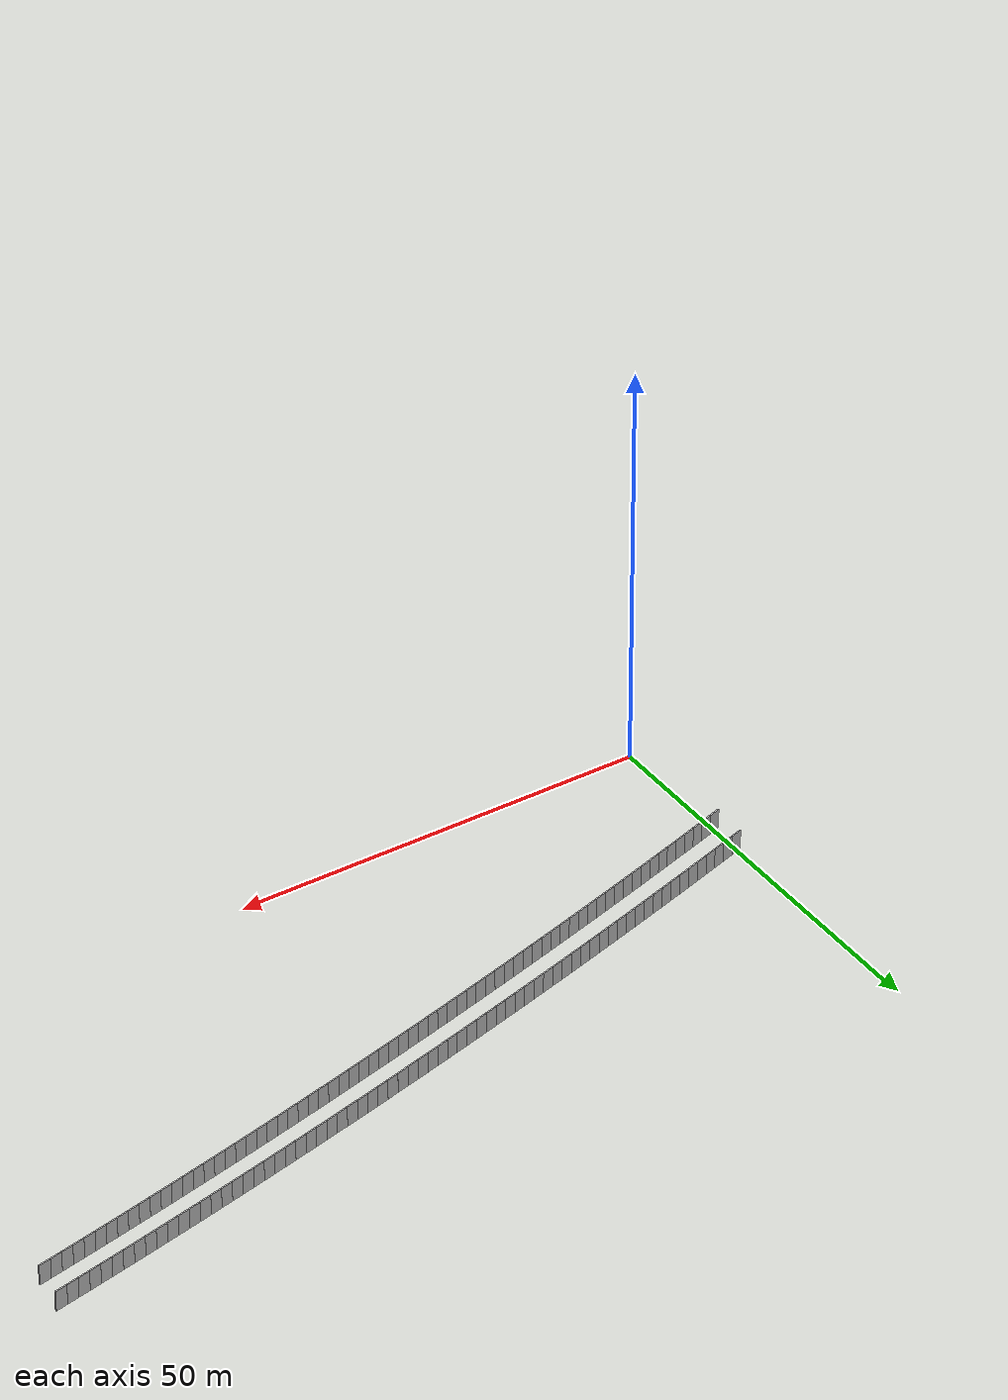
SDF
<sdf version="1.6">
 <model name="sps_0923">
  <static>1</static>
  <allow_auto_disable>0</allow_auto_disable>
  <link name="Wall3027">
   <collision name="collision"><geometry><box><size>1.49635 0.15 2.5</size></box></geometry></collision>
   <visual name="visual">
    <geometry><box><size>1.49635 0.15 2.5</size></box></geometry>
    <transparency>0.0</transparency>
   </visual>
   <pose>98.6193 41.263 1.25 0 0 -2.94586</pose>
  </link>
  <link name="Wall3028">
   <collision name="collision"><geometry><box><size>1.49668 0.15 2.5</size></box></geometry></collision>
   <visual name="visual">
    <geometry><box><size>1.49668 0.15 2.5</size></box></geometry>
    <transparency>0.0</transparency>
   </visual>
   <pose>97.1517 40.9707 1.25 0 0 -2.94412</pose>
  </link>
  <link name="Wall3029">
   <collision name="collision"><geometry><box><size>1.49624 0.15 2.5</size></box></geometry></collision>
   <visual name="visual">
    <geometry><box><size>1.49624 0.15 2.5</size></box></geometry>
    <transparency>0.0</transparency>
   </visual>
   <pose>95.6845 40.6762 1.25 0 0 -2.94289</pose>
  </link>
  <link name="Wall3030">
   <collision name="collision"><geometry><box><size>1.49663 0.15 2.5</size></box></geometry></collision>
   <visual name="visual">
    <geometry><box><size>1.49663 0.15 2.5</size></box></geometry>
    <transparency>0.0</transparency>
   </visual>
   <pose>94.2178 40.3794 1.25 0 0 -2.94099</pose>
  </link>
  <link name="Wall3031">
   <collision name="collision"><geometry><box><size>1.49647 0.15 2.5</size></box></geometry></collision>
   <visual name="visual">
    <geometry><box><size>1.49647 0.15 2.5</size></box></geometry>
    <transparency>0.0</transparency>
   </visual>
   <pose>92.7515 40.0801 1.25 0 0 -2.93947</pose>
  </link>
  <link name="Wall3032">
   <collision name="collision"><geometry><box><size>1.49653 0.15 2.5</size></box></geometry></collision>
   <visual name="visual">
    <geometry><box><size>1.49653 0.15 2.5</size></box></geometry>
    <transparency>0.0</transparency>
   </visual>
   <pose>91.2857 39.7785 1.25 0 0 -2.93785</pose>
  </link>
  <link name="Wall3033">
   <collision name="collision"><geometry><box><size>1.49647 0.15 2.5</size></box></geometry></collision>
   <visual name="visual">
    <geometry><box><size>1.49647 0.15 2.5</size></box></geometry>
    <transparency>0.0</transparency>
   </visual>
   <pose>89.8204 39.4745 1.25 0 0 -2.93622</pose>
  </link>
  <link name="Wall3034">
   <collision name="collision"><geometry><box><size>1.49652 0.15 2.5</size></box></geometry></collision>
   <visual name="visual">
    <geometry><box><size>1.49652 0.15 2.5</size></box></geometry>
    <transparency>0.0</transparency>
   </visual>
   <pose>88.3556 39.1682 1.25 0 0 -2.93469</pose>
  </link>
  <link name="Wall3035">
   <collision name="collision"><geometry><box><size>1.49636 0.15 2.5</size></box></geometry></collision>
   <visual name="visual">
    <geometry><box><size>1.49636 0.15 2.5</size></box></geometry>
    <transparency>0.0</transparency>
   </visual>
   <pose>86.8913 38.8597 1.25 0 0 -2.93321</pose>
  </link>
  <link name="Wall3036">
   <collision name="collision"><geometry><box><size>1.49651 0.15 2.5</size></box></geometry></collision>
   <visual name="visual">
    <geometry><box><size>1.49651 0.15 2.5</size></box></geometry>
    <transparency>0.0</transparency>
   </visual>
   <pose>85.4275 38.5489 1.25 0 0 -2.93156</pose>
  </link>
  <link name="Wall3037">
   <collision name="collision"><geometry><box><size>1.49659 0.15 2.5</size></box></geometry></collision>
   <visual name="visual">
    <geometry><box><size>1.49659 0.15 2.5</size></box></geometry>
    <transparency>0.0</transparency>
   </visual>
   <pose>83.964 38.2357 1.25 0 0 -2.92994</pose>
  </link>
  <link name="Wall3038">
   <collision name="collision"><geometry><box><size>1.49651 0.15 2.5</size></box></geometry></collision>
   <visual name="visual">
    <geometry><box><size>1.49651 0.15 2.5</size></box></geometry>
    <transparency>0.0</transparency>
   </visual>
   <pose>82.5012 37.9201 1.25 0 0 -2.92826</pose>
  </link>
  <link name="Wall3039">
   <collision name="collision"><geometry><box><size>1.49661 0.15 2.5</size></box></geometry></collision>
   <visual name="visual">
    <geometry><box><size>1.49661 0.15 2.5</size></box></geometry>
    <transparency>0.0</transparency>
   </visual>
   <pose>81.0387 37.6022 1.25 0 0 -2.92682</pose>
  </link>
  <link name="Wall3040">
   <collision name="collision"><geometry><box><size>1.49649 0.15 2.5</size></box></geometry></collision>
   <visual name="visual">
    <geometry><box><size>1.49649 0.15 2.5</size></box></geometry>
    <transparency>0.0</transparency>
   </visual>
   <pose>79.5768 37.2821 1.25 0 0 -2.92526</pose>
  </link>
  <link name="Wall3041">
   <collision name="collision"><geometry><box><size>1.49641 0.15 2.5</size></box></geometry></collision>
   <visual name="visual">
    <geometry><box><size>1.49641 0.15 2.5</size></box></geometry>
    <transparency>0.0</transparency>
   </visual>
   <pose>78.1155 36.9597 1.25 0 0 -2.92361</pose>
  </link>
  <link name="Wall3042">
   <collision name="collision"><geometry><box><size>1.49651 0.15 2.5</size></box></geometry></collision>
   <visual name="visual">
    <geometry><box><size>1.49651 0.15 2.5</size></box></geometry>
    <transparency>0.0</transparency>
   </visual>
   <pose>76.6547 36.6349 1.25 0 0 -2.922</pose>
  </link>
  <link name="Wall3043">
   <collision name="collision"><geometry><box><size>1.49645 0.15 2.5</size></box></geometry></collision>
   <visual name="visual">
    <geometry><box><size>1.49645 0.15 2.5</size></box></geometry>
    <transparency>0.0</transparency>
   </visual>
   <pose>75.1944 36.3078 1.25 0 0 -2.92049</pose>
  </link>
  <link name="Wall3044">
   <collision name="collision"><geometry><box><size>1.49657 0.15 2.5</size></box></geometry></collision>
   <visual name="visual">
    <geometry><box><size>1.49657 0.15 2.5</size></box></geometry>
    <transparency>0.0</transparency>
   </visual>
   <pose>73.7346 35.9784 1.25 0 0 -2.91883</pose>
  </link>
  <link name="Wall3045">
   <collision name="collision"><geometry><box><size>1.49637 0.15 2.5</size></box></geometry></collision>
   <visual name="visual">
    <geometry><box><size>1.49637 0.15 2.5</size></box></geometry>
    <transparency>0.0</transparency>
   </visual>
   <pose>72.2754 35.6469 1.25 0 0 -2.91759</pose>
  </link>
  <link name="Wall3046">
   <collision name="collision"><geometry><box><size>1.49644 0.15 2.5</size></box></geometry></collision>
   <visual name="visual">
    <geometry><box><size>1.49644 0.15 2.5</size></box></geometry>
    <transparency>0.0</transparency>
   </visual>
   <pose>70.8167 35.313 1.25 0 0 -2.91555</pose>
  </link>
  <link name="Wall3047">
   <collision name="collision"><geometry><box><size>1.49654 0.15 2.5</size></box></geometry></collision>
   <visual name="visual">
    <geometry><box><size>1.49654 0.15 2.5</size></box></geometry>
    <transparency>0.0</transparency>
   </visual>
   <pose>69.3585 34.9766 1.25 0 0 -2.91418</pose>
  </link>
  <link name="Wall3048">
   <collision name="collision"><geometry><box><size>1.49652 0.15 2.5</size></box></geometry></collision>
   <visual name="visual">
    <geometry><box><size>1.49652 0.15 2.5</size></box></geometry>
    <transparency>0.0</transparency>
   </visual>
   <pose>67.9008 34.6379 1.25 0 0 -2.91242</pose>
  </link>
  <link name="Wall3049">
   <collision name="collision"><geometry><box><size>1.49646 0.15 2.5</size></box></geometry></collision>
   <visual name="visual">
    <geometry><box><size>1.49646 0.15 2.5</size></box></geometry>
    <transparency>0.0</transparency>
   </visual>
   <pose>66.4437 34.2969 1.25 0 0 -2.91099</pose>
  </link>
  <link name="Wall3050">
   <collision name="collision"><geometry><box><size>1.49652 0.15 2.5</size></box></geometry></collision>
   <visual name="visual">
    <geometry><box><size>1.49652 0.15 2.5</size></box></geometry>
    <transparency>0.0</transparency>
   </visual>
   <pose>64.9871 33.9537 1.25 0 0 -2.9094</pose>
  </link>
  <link name="Wall3051">
   <collision name="collision"><geometry><box><size>1.49637 0.15 2.5</size></box></geometry></collision>
   <visual name="visual">
    <geometry><box><size>1.49637 0.15 2.5</size></box></geometry>
    <transparency>0.0</transparency>
   </visual>
   <pose>63.5311 33.6081 1.25 0 0 -2.9077</pose>
  </link>
  <link name="Wall3052">
   <collision name="collision"><geometry><box><size>1.49664 0.15 2.5</size></box></geometry></collision>
   <visual name="visual">
    <geometry><box><size>1.49664 0.15 2.5</size></box></geometry>
    <transparency>0.0</transparency>
   </visual>
   <pose>62.0756 33.2602 1.25 0 0 -2.90624</pose>
  </link>
  <link name="Wall3053">
   <collision name="collision"><geometry><box><size>1.49668 0.15 2.5</size></box></geometry></collision>
   <visual name="visual">
    <geometry><box><size>1.49668 0.15 2.5</size></box></geometry>
    <transparency>0.0</transparency>
   </visual>
   <pose>60.6204 32.91 1.25 0 0 -2.90457</pose>
  </link>
  <link name="Wall3054">
   <collision name="collision"><geometry><box><size>1.49635 0.15 2.5</size></box></geometry></collision>
   <visual name="visual">
    <geometry><box><size>1.49635 0.15 2.5</size></box></geometry>
    <transparency>0.0</transparency>
   </visual>
   <pose>59.166 32.5575 1.25 0 0 -2.90304</pose>
  </link>
  <link name="Wall3055">
   <collision name="collision"><geometry><box><size>1.49658 0.15 2.5</size></box></geometry></collision>
   <visual name="visual">
    <geometry><box><size>1.49658 0.15 2.5</size></box></geometry>
    <transparency>0.0</transparency>
   </visual>
   <pose>57.7122 32.2027 1.25 0 0 -2.9014</pose>
  </link>
  <link name="Wall3056">
   <collision name="collision"><geometry><box><size>1.49649 0.15 2.5</size></box></geometry></collision>
   <visual name="visual">
    <geometry><box><size>1.49649 0.15 2.5</size></box></geometry>
    <transparency>0.0</transparency>
   </visual>
   <pose>56.2589 31.8456 1.25 0 0 -2.89992</pose>
  </link>
  <link name="Wall3057">
   <collision name="collision"><geometry><box><size>1.49649 0.15 2.5</size></box></geometry></collision>
   <visual name="visual">
    <geometry><box><size>1.49649 0.15 2.5</size></box></geometry>
    <transparency>0.0</transparency>
   </visual>
   <pose>54.8062 31.4862 1.25 0 0 -2.89824</pose>
  </link>
  <link name="Wall3058">
   <collision name="collision"><geometry><box><size>1.49644 0.15 2.5</size></box></geometry></collision>
   <visual name="visual">
    <geometry><box><size>1.49644 0.15 2.5</size></box></geometry>
    <transparency>0.0</transparency>
   </visual>
   <pose>53.3541 31.1245 1.25 0 0 -2.89667</pose>
  </link>
  <link name="Wall3059">
   <collision name="collision"><geometry><box><size>1.49641 0.15 2.5</size></box></geometry></collision>
   <visual name="visual">
    <geometry><box><size>1.49641 0.15 2.5</size></box></geometry>
    <transparency>0.0</transparency>
   </visual>
   <pose>51.9027 30.7605 1.25 0 0 -2.89507</pose>
  </link>
  <link name="Wall3060">
   <collision name="collision"><geometry><box><size>1.49637 0.15 2.5</size></box></geometry></collision>
   <visual name="visual">
    <geometry><box><size>1.49637 0.15 2.5</size></box></geometry>
    <transparency>0.0</transparency>
   </visual>
   <pose>50.4518 30.3943 1.25 0 0 -2.89368</pose>
  </link>
  <link name="Wall3061">
   <collision name="collision"><geometry><box><size>1.49661 0.15 2.5</size></box></geometry></collision>
   <visual name="visual">
    <geometry><box><size>1.49661 0.15 2.5</size></box></geometry>
    <transparency>0.0</transparency>
   </visual>
   <pose>49.0014 30.0258 1.25 0 0 -2.89191</pose>
  </link>
  <link name="Wall3062">
   <collision name="collision"><geometry><box><size>1.49638 0.15 2.5</size></box></geometry></collision>
   <visual name="visual">
    <geometry><box><size>1.49638 0.15 2.5</size></box></geometry>
    <transparency>0.0</transparency>
   </visual>
   <pose>47.5516 29.6549 1.25 0 0 -2.89035</pose>
  </link>
  <link name="Wall3063">
   <collision name="collision"><geometry><box><size>1.49662 0.15 2.5</size></box></geometry></collision>
   <visual name="visual">
    <geometry><box><size>1.49662 0.15 2.5</size></box></geometry>
    <transparency>0.0</transparency>
   </visual>
   <pose>46.1023 29.2817 1.25 0 0 -2.88875</pose>
  </link>
  <link name="Wall3064">
   <collision name="collision"><geometry><box><size>1.49634 0.15 2.5</size></box></geometry></collision>
   <visual name="visual">
    <geometry><box><size>1.49634 0.15 2.5</size></box></geometry>
    <transparency>0.0</transparency>
   </visual>
   <pose>44.6537 28.9062 1.25 0 0 -2.88719</pose>
  </link>
  <link name="Wall3065">
   <collision name="collision"><geometry><box><size>1.49661 0.15 2.5</size></box></geometry></collision>
   <visual name="visual">
    <geometry><box><size>1.49661 0.15 2.5</size></box></geometry>
    <transparency>0.0</transparency>
   </visual>
   <pose>43.2057 28.5284 1.25 0 0 -2.88555</pose>
  </link>
  <link name="Wall3066">
   <collision name="collision"><geometry><box><size>1.49656 0.15 2.5</size></box></geometry></collision>
   <visual name="visual">
    <geometry><box><size>1.49656 0.15 2.5</size></box></geometry>
    <transparency>0.0</transparency>
   </visual>
   <pose>41.7582 28.1483 1.25 0 0 -2.88406</pose>
  </link>
  <link name="Wall3067">
   <collision name="collision"><geometry><box><size>1.49659 0.15 2.5</size></box></geometry></collision>
   <visual name="visual">
    <geometry><box><size>1.49659 0.15 2.5</size></box></geometry>
    <transparency>0.0</transparency>
   </visual>
   <pose>40.3113 27.7659 1.25 0 0 -2.88238</pose>
  </link>
  <link name="Wall3068">
   <collision name="collision"><geometry><box><size>1.49639 0.15 2.5</size></box></geometry></collision>
   <visual name="visual">
    <geometry><box><size>1.49639 0.15 2.5</size></box></geometry>
    <transparency>0.0</transparency>
   </visual>
   <pose>38.8651 27.3812 1.25 0 0 -2.88082</pose>
  </link>
  <link name="Wall3069">
   <collision name="collision"><geometry><box><size>1.49655 0.15 2.5</size></box></geometry></collision>
   <visual name="visual">
    <geometry><box><size>1.49655 0.15 2.5</size></box></geometry>
    <transparency>0.0</transparency>
   </visual>
   <pose>37.4195 26.9943 1.25 0 0 -2.87933</pose>
  </link>
  <link name="Wall3070">
   <collision name="collision"><geometry><box><size>1.49641 0.15 2.5</size></box></geometry></collision>
   <visual name="visual">
    <geometry><box><size>1.49641 0.15 2.5</size></box></geometry>
    <transparency>0.0</transparency>
   </visual>
   <pose>35.9746 26.6051 1.25 0 0 -2.87762</pose>
  </link>
  <link name="Wall3071">
   <collision name="collision"><geometry><box><size>1.49644 0.15 2.5</size></box></geometry></collision>
   <visual name="visual">
    <geometry><box><size>1.49644 0.15 2.5</size></box></geometry>
    <transparency>0.0</transparency>
   </visual>
   <pose>34.5303 26.2136 1.25 0 0 -2.87615</pose>
  </link>
  <link name="Wall3072">
   <collision name="collision"><geometry><box><size>1.4965 0.15 2.5</size></box></geometry></collision>
   <visual name="visual">
    <geometry><box><size>1.4965 0.15 2.5</size></box></geometry>
    <transparency>0.0</transparency>
   </visual>
   <pose>33.0865 25.8198 1.25 0 0 -2.87446</pose>
  </link>
  <link name="Wall3073">
   <collision name="collision"><geometry><box><size>1.49672 0.15 2.5</size></box></geometry></collision>
   <visual name="visual">
    <geometry><box><size>1.49672 0.15 2.5</size></box></geometry>
    <transparency>0.0</transparency>
   </visual>
   <pose>31.6433 25.4236 1.25 0 0 -2.87285</pose>
  </link>
  <link name="Wall3074">
   <collision name="collision"><geometry><box><size>1.49654 0.15 2.5</size></box></geometry></collision>
   <visual name="visual">
    <geometry><box><size>1.49654 0.15 2.5</size></box></geometry>
    <transparency>0.0</transparency>
   </visual>
   <pose>30.2007 25.0251 1.25 0 0 -2.8713</pose>
  </link>
  <link name="Wall3075">
   <collision name="collision"><geometry><box><size>1.49636 0.15 2.5</size></box></geometry></collision>
   <visual name="visual">
    <geometry><box><size>1.49636 0.15 2.5</size></box></geometry>
    <transparency>0.0</transparency>
   </visual>
   <pose>28.7589 24.6244 1.25 0 0 -2.86974</pose>
  </link>
  <link name="Wall3076">
   <collision name="collision"><geometry><box><size>1.49649 0.15 2.5</size></box></geometry></collision>
   <visual name="visual">
    <geometry><box><size>1.49649 0.15 2.5</size></box></geometry>
    <transparency>0.0</transparency>
   </visual>
   <pose>27.3177 24.2216 1.25 0 0 -2.86837</pose>
  </link>
  <link name="Wall3077">
   <collision name="collision"><geometry><box><size>1.49642 0.15 2.5</size></box></geometry></collision>
   <visual name="visual">
    <geometry><box><size>1.49642 0.15 2.5</size></box></geometry>
    <transparency>0.0</transparency>
   </visual>
   <pose>25.8772 23.8165 1.25 0 0 -2.86658</pose>
  </link>
  <link name="Wall3078">
   <collision name="collision"><geometry><box><size>1.49651 0.15 2.5</size></box></geometry></collision>
   <visual name="visual">
    <geometry><box><size>1.49651 0.15 2.5</size></box></geometry>
    <transparency>0.0</transparency>
   </visual>
   <pose>24.4372 23.409 1.25 0 0 -2.86502</pose>
  </link>
  <link name="Wall3079">
   <collision name="collision"><geometry><box><size>1.4965 0.15 2.5</size></box></geometry></collision>
   <visual name="visual">
    <geometry><box><size>1.4965 0.15 2.5</size></box></geometry>
    <transparency>0.0</transparency>
   </visual>
   <pose>22.9979 22.9992 1.25 0 0 -2.86341</pose>
  </link>
  <link name="Wall3080">
   <collision name="collision"><geometry><box><size>1.49641 0.15 2.5</size></box></geometry></collision>
   <visual name="visual">
    <geometry><box><size>1.49641 0.15 2.5</size></box></geometry>
    <transparency>0.0</transparency>
   </visual>
   <pose>21.5593 22.5871 1.25 0 0 -2.86183</pose>
  </link>
  <link name="Wall3081">
   <collision name="collision"><geometry><box><size>1.49666 0.15 2.5</size></box></geometry></collision>
   <visual name="visual">
    <geometry><box><size>1.49666 0.15 2.5</size></box></geometry>
    <transparency>0.0</transparency>
   </visual>
   <pose>20.1213 22.1727 1.25 0 0 -2.86022</pose>
  </link>
  <link name="Wall3082">
   <collision name="collision"><geometry><box><size>1.49647 0.15 2.5</size></box></geometry></collision>
   <visual name="visual">
    <geometry><box><size>1.49647 0.15 2.5</size></box></geometry>
    <transparency>0.0</transparency>
   </visual>
   <pose>18.684 21.756 1.25 0 0 -2.85861</pose>
  </link>
  <link name="Wall3083">
   <collision name="collision"><geometry><box><size>1.49642 0.15 2.5</size></box></geometry></collision>
   <visual name="visual">
    <geometry><box><size>1.49642 0.15 2.5</size></box></geometry>
    <transparency>0.0</transparency>
   </visual>
   <pose>17.2474 21.337 1.25 0 0 -2.85698</pose>
  </link>
  <link name="Wall3084">
   <collision name="collision"><geometry><box><size>1.49664 0.15 2.5</size></box></geometry></collision>
   <visual name="visual">
    <geometry><box><size>1.49664 0.15 2.5</size></box></geometry>
    <transparency>0.0</transparency>
   </visual>
   <pose>15.8114 20.9157 1.25 0 0 -2.85546</pose>
  </link>
  <link name="Wall3085">
   <collision name="collision"><geometry><box><size>1.49649 0.15 2.5</size></box></geometry></collision>
   <visual name="visual">
    <geometry><box><size>1.49649 0.15 2.5</size></box></geometry>
    <transparency>0.0</transparency>
   </visual>
   <pose>14.376 20.4922 1.25 0 0 -2.85394</pose>
  </link>
  <link name="Wall3086">
   <collision name="collision"><geometry><box><size>1.49637 0.15 2.5</size></box></geometry></collision>
   <visual name="visual">
    <geometry><box><size>1.49637 0.15 2.5</size></box></geometry>
    <transparency>0.0</transparency>
   </visual>
   <pose>12.9414 20.0665 1.25 0 0 -2.85234</pose>
  </link>
  <link name="Wall3087">
   <collision name="collision"><geometry><box><size>1.49641 0.15 2.5</size></box></geometry></collision>
   <visual name="visual">
    <geometry><box><size>1.49641 0.15 2.5</size></box></geometry>
    <transparency>0.0</transparency>
   </visual>
   <pose>11.5075 19.6386 1.25 0 0 -2.85082</pose>
  </link>
  <link name="Wall3088">
   <collision name="collision"><geometry><box><size>1.49662 0.15 2.5</size></box></geometry></collision>
   <visual name="visual">
    <geometry><box><size>1.49662 0.15 2.5</size></box></geometry>
    <transparency>0.0</transparency>
   </visual>
   <pose>10.0741 19.2083 1.25 0 0 -2.84907</pose>
  </link>
  <link name="Wall3089">
   <collision name="collision"><geometry><box><size>1.49639 0.15 2.5</size></box></geometry></collision>
   <visual name="visual">
    <geometry><box><size>1.49639 0.15 2.5</size></box></geometry>
    <transparency>0.0</transparency>
   </visual>
   <pose>8.64153 18.7757 1.25 0 0 -2.84762</pose>
  </link>
  <link name="Wall3090">
   <collision name="collision"><geometry><box><size>1.49651 0.15 2.5</size></box></geometry></collision>
   <visual name="visual">
    <geometry><box><size>1.49651 0.15 2.5</size></box></geometry>
    <transparency>0.0</transparency>
   </visual>
   <pose>7.20965 18.3409 1.25 0 0 -2.84594</pose>
  </link>
  <link name="Wall3091">
   <collision name="collision"><geometry><box><size>1.49661 0.15 2.5</size></box></geometry></collision>
   <visual name="visual">
    <geometry><box><size>1.49661 0.15 2.5</size></box></geometry>
    <transparency>0.0</transparency>
   </visual>
   <pose>5.77834 17.9038 1.25 0 0 -2.84446</pose>
  </link>
  <link name="Wall3092">
   <collision name="collision"><geometry><box><size>1.49638 0.15 2.5</size></box></geometry></collision>
   <visual name="visual">
    <geometry><box><size>1.49638 0.15 2.5</size></box></geometry>
    <transparency>0.0</transparency>
   </visual>
   <pose>4.34774 17.4646 1.25 0 0 -2.84301</pose>
  </link>
  <link name="Wall3093">
   <collision name="collision"><geometry><box><size>1.49658 0.15 2.5</size></box></geometry></collision>
   <visual name="visual">
    <geometry><box><size>1.49658 0.15 2.5</size></box></geometry>
    <transparency>0.0</transparency>
   </visual>
   <pose>2.91787 17.0231 1.25 0 0 -2.84121</pose>
  </link>
  <link name="Wall3094">
   <collision name="collision"><geometry><box><size>1.49653 0.15 2.5</size></box></geometry></collision>
   <visual name="visual">
    <geometry><box><size>1.49653 0.15 2.5</size></box></geometry>
    <transparency>0.0</transparency>
   </visual>
   <pose>1.48867 16.5792 1.25 0 0 -2.83967</pose>
  </link>
  <link name="Wall3095">
   <collision name="collision"><geometry><box><size>1.49642 0.15 2.5</size></box></geometry></collision>
   <visual name="visual">
    <geometry><box><size>1.49642 0.15 2.5</size></box></geometry>
    <transparency>0.0</transparency>
   </visual>
   <pose>0.0602639 16.133 1.25 0 0 -2.83798</pose>
  </link>
  <link name="Wall5637">
   <collision name="collision"><geometry><box><size>1.50303 0.15 2.5</size></box></geometry></collision>
   <visual name="visual">
    <geometry><box><size>1.50303 0.15 2.5</size></box></geometry>
    <transparency>0.0</transparency>
   </visual>
   <pose>99.2831 45.6137 1.25 0 0 -2.94745</pose>
  </link>
  <link name="Wall5638">
   <collision name="collision"><geometry><box><size>1.50296 0.15 2.5</size></box></geometry></collision>
   <visual name="visual">
    <geometry><box><size>1.50296 0.15 2.5</size></box></geometry>
    <transparency>0.0</transparency>
   </visual>
   <pose>97.8086 45.3225 1.25 0 0 -2.94578</pose>
  </link>
  <link name="Wall5639">
   <collision name="collision"><geometry><box><size>1.50311 0.15 2.5</size></box></geometry></collision>
   <visual name="visual">
    <geometry><box><size>1.50311 0.15 2.5</size></box></geometry>
    <transparency>0.0</transparency>
   </visual>
   <pose>96.3344 45.0291 1.25 0 0 -2.94448</pose>
  </link>
  <link name="Wall5640">
   <collision name="collision"><geometry><box><size>1.50289 0.15 2.5</size></box></geometry></collision>
   <visual name="visual">
    <geometry><box><size>1.50289 0.15 2.5</size></box></geometry>
    <transparency>0.0</transparency>
   </visual>
   <pose>94.8608 44.7333 1.25 0 0 -2.9425</pose>
  </link>
  <link name="Wall5641">
   <collision name="collision"><geometry><box><size>1.50308 0.15 2.5</size></box></geometry></collision>
   <visual name="visual">
    <geometry><box><size>1.50308 0.15 2.5</size></box></geometry>
    <transparency>0.0</transparency>
   </visual>
   <pose>93.3877 44.435 1.25 0 0 -2.94108</pose>
  </link>
  <link name="Wall5642">
   <collision name="collision"><geometry><box><size>1.50321 0.15 2.5</size></box></geometry></collision>
   <visual name="visual">
    <geometry><box><size>1.50321 0.15 2.5</size></box></geometry>
    <transparency>0.0</transparency>
   </visual>
   <pose>91.915 44.1344 1.25 0 0 -2.93944</pose>
  </link>
  <link name="Wall5643">
   <collision name="collision"><geometry><box><size>1.50315 0.15 2.5</size></box></geometry></collision>
   <visual name="visual">
    <geometry><box><size>1.50315 0.15 2.5</size></box></geometry>
    <transparency>0.0</transparency>
   </visual>
   <pose>90.4426 43.8314 1.25 0 0 -2.93781</pose>
  </link>
  <link name="Wall5644">
   <collision name="collision"><geometry><box><size>1.50312 0.15 2.5</size></box></geometry></collision>
   <visual name="visual">
    <geometry><box><size>1.50312 0.15 2.5</size></box></geometry>
    <transparency>0.0</transparency>
   </visual>
   <pose>88.9708 43.5261 1.25 0 0 -2.93631</pose>
  </link>
  <link name="Wall5645">
   <collision name="collision"><geometry><box><size>1.50289 0.15 2.5</size></box></geometry></collision>
   <visual name="visual">
    <geometry><box><size>1.50289 0.15 2.5</size></box></geometry>
    <transparency>0.0</transparency>
   </visual>
   <pose>87.4997 43.2185 1.25 0 0 -2.93466</pose>
  </link>
  <link name="Wall5646">
   <collision name="collision"><geometry><box><size>1.50315 0.15 2.5</size></box></geometry></collision>
   <visual name="visual">
    <geometry><box><size>1.50315 0.15 2.5</size></box></geometry>
    <transparency>0.0</transparency>
   </visual>
   <pose>86.029 42.9085 1.25 0 0 -2.93304</pose>
  </link>
  <link name="Wall5647">
   <collision name="collision"><geometry><box><size>1.50307 0.15 2.5</size></box></geometry></collision>
   <visual name="visual">
    <geometry><box><size>1.50307 0.15 2.5</size></box></geometry>
    <transparency>0.0</transparency>
   </visual>
   <pose>84.5586 42.5962 1.25 0 0 -2.93153</pose>
  </link>
  <link name="Wall5648">
   <collision name="collision"><geometry><box><size>1.50315 0.15 2.5</size></box></geometry></collision>
   <visual name="visual">
    <geometry><box><size>1.50315 0.15 2.5</size></box></geometry>
    <transparency>0.0</transparency>
   </visual>
   <pose>83.0888 42.2816 1.25 0 0 -2.92993</pose>
  </link>
  <link name="Wall5649">
   <collision name="collision"><geometry><box><size>1.50302 0.15 2.5</size></box></geometry></collision>
   <visual name="visual">
    <geometry><box><size>1.50302 0.15 2.5</size></box></geometry>
    <transparency>0.0</transparency>
   </visual>
   <pose>81.6195 41.9647 1.25 0 0 -2.92841</pose>
  </link>
  <link name="Wall5650">
   <collision name="collision"><geometry><box><size>1.50311 0.15 2.5</size></box></geometry></collision>
   <visual name="visual">
    <geometry><box><size>1.50311 0.15 2.5</size></box></geometry>
    <transparency>0.0</transparency>
   </visual>
   <pose>80.1507 41.6455 1.25 0 0 -2.9268</pose>
  </link>
  <link name="Wall5651">
   <collision name="collision"><geometry><box><size>1.50309 0.15 2.5</size></box></geometry></collision>
   <visual name="visual">
    <geometry><box><size>1.50309 0.15 2.5</size></box></geometry>
    <transparency>0.0</transparency>
   </visual>
   <pose>78.6825 41.3239 1.25 0 0 -2.92514</pose>
  </link>
  <link name="Wall5652">
   <collision name="collision"><geometry><box><size>1.50315 0.15 2.5</size></box></geometry></collision>
   <visual name="visual">
    <geometry><box><size>1.50315 0.15 2.5</size></box></geometry>
    <transparency>0.0</transparency>
   </visual>
   <pose>77.2147 41 1.25 0 0 -2.92365</pose>
  </link>
  <link name="Wall5653">
   <collision name="collision"><geometry><box><size>1.50303 0.15 2.5</size></box></geometry></collision>
   <visual name="visual">
    <geometry><box><size>1.50303 0.15 2.5</size></box></geometry>
    <transparency>0.0</transparency>
   </visual>
   <pose>75.7474 40.6739 1.25 0 0 -2.92214</pose>
  </link>
  <link name="Wall5654">
   <collision name="collision"><geometry><box><size>1.50305 0.15 2.5</size></box></geometry></collision>
   <visual name="visual">
    <geometry><box><size>1.50305 0.15 2.5</size></box></geometry>
    <transparency>0.0</transparency>
   </visual>
   <pose>74.2807 40.3454 1.25 0 0 -2.92039</pose>
  </link>
  <link name="Wall5655">
   <collision name="collision"><geometry><box><size>1.50304 0.15 2.5</size></box></geometry></collision>
   <visual name="visual">
    <geometry><box><size>1.50304 0.15 2.5</size></box></geometry>
    <transparency>0.0</transparency>
   </visual>
   <pose>72.8144 40.0147 1.25 0 0 -2.91914</pose>
  </link>
  <link name="Wall5656">
   <collision name="collision"><geometry><box><size>1.50307 0.15 2.5</size></box></geometry></collision>
   <visual name="visual">
    <geometry><box><size>1.50307 0.15 2.5</size></box></geometry>
    <transparency>0.0</transparency>
   </visual>
   <pose>71.3487 39.6817 1.25 0 0 -2.91723</pose>
  </link>
  <link name="Wall5657">
   <collision name="collision"><geometry><box><size>1.50314 0.15 2.5</size></box></geometry></collision>
   <visual name="visual">
    <geometry><box><size>1.50314 0.15 2.5</size></box></geometry>
    <transparency>0.0</transparency>
   </visual>
   <pose>69.8836 39.3462 1.25 0 0 -2.91574</pose>
  </link>
  <link name="Wall5658">
   <collision name="collision"><geometry><box><size>1.503 0.15 2.5</size></box></geometry></collision>
   <visual name="visual">
    <geometry><box><size>1.503 0.15 2.5</size></box></geometry>
    <transparency>0.0</transparency>
   </visual>
   <pose>68.419 39.0083 1.25 0 0 -2.91397</pose>
  </link>
  <link name="Wall5659">
   <collision name="collision"><geometry><box><size>1.5031 0.15 2.5</size></box></geometry></collision>
   <visual name="visual">
    <geometry><box><size>1.5031 0.15 2.5</size></box></geometry>
    <transparency>0.0</transparency>
   </visual>
   <pose>66.9549 38.668 1.25 0 0 -2.91244</pose>
  </link>
  <link name="Wall5660">
   <collision name="collision"><geometry><box><size>1.50317 0.15 2.5</size></box></geometry></collision>
   <visual name="visual">
    <geometry><box><size>1.50317 0.15 2.5</size></box></geometry>
    <transparency>0.0</transparency>
   </visual>
   <pose>65.4914 38.3255 1.25 0 0 -2.91099</pose>
  </link>
  <link name="Wall5661">
   <collision name="collision"><geometry><box><size>1.50315 0.15 2.5</size></box></geometry></collision>
   <visual name="visual">
    <geometry><box><size>1.50315 0.15 2.5</size></box></geometry>
    <transparency>0.0</transparency>
   </visual>
   <pose>64.0283 37.9808 1.25 0 0 -2.90945</pose>
  </link>
  <link name="Wall5662">
   <collision name="collision"><geometry><box><size>1.50309 0.15 2.5</size></box></geometry></collision>
   <visual name="visual">
    <geometry><box><size>1.50309 0.15 2.5</size></box></geometry>
    <transparency>0.0</transparency>
   </visual>
   <pose>62.5658 37.6337 1.25 0 0 -2.90768</pose>
  </link>
  <link name="Wall5663">
   <collision name="collision"><geometry><box><size>1.50307 0.15 2.5</size></box></geometry></collision>
   <visual name="visual">
    <geometry><box><size>1.50307 0.15 2.5</size></box></geometry>
    <transparency>0.0</transparency>
   </visual>
   <pose>61.1039 37.2842 1.25 0 0 -2.90618</pose>
  </link>
  <link name="Wall5664">
   <collision name="collision"><geometry><box><size>1.50305 0.15 2.5</size></box></geometry></collision>
   <visual name="visual">
    <geometry><box><size>1.50305 0.15 2.5</size></box></geometry>
    <transparency>0.0</transparency>
   </visual>
   <pose>59.6426 36.9324 1.25 0 0 -2.9045</pose>
  </link>
  <link name="Wall5665">
   <collision name="collision"><geometry><box><size>1.50296 0.15 2.5</size></box></geometry></collision>
   <visual name="visual">
    <geometry><box><size>1.50296 0.15 2.5</size></box></geometry>
    <transparency>0.0</transparency>
   </visual>
   <pose>58.1819 36.5783 1.25 0 0 -2.90303</pose>
  </link>
  <link name="Wall5666">
   <collision name="collision"><geometry><box><size>1.50313 0.15 2.5</size></box></geometry></collision>
   <visual name="visual">
    <geometry><box><size>1.50313 0.15 2.5</size></box></geometry>
    <transparency>0.0</transparency>
   </visual>
   <pose>56.7217 36.222 1.25 0 0 -2.90151</pose>
  </link>
  <link name="Wall5667">
   <collision name="collision"><geometry><box><size>1.50311 0.15 2.5</size></box></geometry></collision>
   <visual name="visual">
    <geometry><box><size>1.50311 0.15 2.5</size></box></geometry>
    <transparency>0.0</transparency>
   </visual>
   <pose>55.262 35.8634 1.25 0 0 -2.89987</pose>
  </link>
  <link name="Wall5668">
   <collision name="collision"><geometry><box><size>1.50287 0.15 2.5</size></box></geometry></collision>
   <visual name="visual">
    <geometry><box><size>1.50287 0.15 2.5</size></box></geometry>
    <transparency>0.0</transparency>
   </visual>
   <pose>53.8029 35.5025 1.25 0 0 -2.89833</pose>
  </link>
  <link name="Wall5669">
   <collision name="collision"><geometry><box><size>1.50326 0.15 2.5</size></box></geometry></collision>
   <visual name="visual">
    <geometry><box><size>1.50326 0.15 2.5</size></box></geometry>
    <transparency>0.0</transparency>
   </visual>
   <pose>52.3444 35.1392 1.25 0 0 -2.89659</pose>
  </link>
  <link name="Wall5670">
   <collision name="collision"><geometry><box><size>1.50302 0.15 2.5</size></box></geometry></collision>
   <visual name="visual">
    <geometry><box><size>1.50302 0.15 2.5</size></box></geometry>
    <transparency>0.0</transparency>
   </visual>
   <pose>50.8865 34.7735 1.25 0 0 -2.89509</pose>
  </link>
  <link name="Wall5671">
   <collision name="collision"><geometry><box><size>1.50299 0.15 2.5</size></box></geometry></collision>
   <visual name="visual">
    <geometry><box><size>1.50299 0.15 2.5</size></box></geometry>
    <transparency>0.0</transparency>
   </visual>
   <pose>49.4292 34.4057 1.25 0 0 -2.89366</pose>
  </link>
  <link name="Wall5672">
   <collision name="collision"><geometry><box><size>1.50315 0.15 2.5</size></box></geometry></collision>
   <visual name="visual">
    <geometry><box><size>1.50315 0.15 2.5</size></box></geometry>
    <transparency>0.0</transparency>
   </visual>
   <pose>47.9723 34.0357 1.25 0 0 -2.89209</pose>
  </link>
  <link name="Wall5673">
   <collision name="collision"><geometry><box><size>1.50304 0.15 2.5</size></box></geometry></collision>
   <visual name="visual">
    <geometry><box><size>1.50304 0.15 2.5</size></box></geometry>
    <transparency>0.0</transparency>
   </visual>
   <pose>46.5161 33.6632 1.25 0 0 -2.89023</pose>
  </link>
  <link name="Wall5674">
   <collision name="collision"><geometry><box><size>1.50299 0.15 2.5</size></box></geometry></collision>
   <visual name="visual">
    <geometry><box><size>1.50299 0.15 2.5</size></box></geometry>
    <transparency>0.0</transparency>
   </visual>
   <pose>45.0606 33.2883 1.25 0 0 -2.88875</pose>
  </link>
  <link name="Wall5675">
   <collision name="collision"><geometry><box><size>1.50318 0.15 2.5</size></box></geometry></collision>
   <visual name="visual">
    <geometry><box><size>1.50318 0.15 2.5</size></box></geometry>
    <transparency>0.0</transparency>
   </visual>
   <pose>43.6056 32.9111 1.25 0 0 -2.88711</pose>
  </link>
  <link name="Wall5676">
   <collision name="collision"><geometry><box><size>1.50319 0.15 2.5</size></box></geometry></collision>
   <visual name="visual">
    <geometry><box><size>1.50319 0.15 2.5</size></box></geometry>
    <transparency>0.0</transparency>
   </visual>
   <pose>42.1511 32.5316 1.25 0 0 -2.88564</pose>
  </link>
  <link name="Wall5677">
   <collision name="collision"><geometry><box><size>1.503 0.15 2.5</size></box></geometry></collision>
   <visual name="visual">
    <geometry><box><size>1.503 0.15 2.5</size></box></geometry>
    <transparency>0.0</transparency>
   </visual>
   <pose>40.6973 32.1498 1.25 0 0 -2.88389</pose>
  </link>
  <link name="Wall5678">
   <collision name="collision"><geometry><box><size>1.50302 0.15 2.5</size></box></geometry></collision>
   <visual name="visual">
    <geometry><box><size>1.50302 0.15 2.5</size></box></geometry>
    <transparency>0.0</transparency>
   </visual>
   <pose>39.2443 31.7657 1.25 0 0 -2.88242</pose>
  </link>
  <link name="Wall5679">
   <collision name="collision"><geometry><box><size>1.50304 0.15 2.5</size></box></geometry></collision>
   <visual name="visual">
    <geometry><box><size>1.50304 0.15 2.5</size></box></geometry>
    <transparency>0.0</transparency>
   </visual>
   <pose>37.7917 31.3793 1.25 0 0 -2.88079</pose>
  </link>
  <link name="Wall5680">
   <collision name="collision"><geometry><box><size>1.50303 0.15 2.5</size></box></geometry></collision>
   <visual name="visual">
    <geometry><box><size>1.50303 0.15 2.5</size></box></geometry>
    <transparency>0.0</transparency>
   </visual>
   <pose>36.3398 30.9906 1.25 0 0 -2.87923</pose>
  </link>
  <link name="Wall5681">
   <collision name="collision"><geometry><box><size>1.50322 0.15 2.5</size></box></geometry></collision>
   <visual name="visual">
    <geometry><box><size>1.50322 0.15 2.5</size></box></geometry>
    <transparency>0.0</transparency>
   </visual>
   <pose>34.8884 30.5996 1.25 0 0 -2.87767</pose>
  </link>
  <link name="Wall5682">
   <collision name="collision"><geometry><box><size>1.50305 0.15 2.5</size></box></geometry></collision>
   <visual name="visual">
    <geometry><box><size>1.50305 0.15 2.5</size></box></geometry>
    <transparency>0.0</transparency>
   </visual>
   <pose>33.4377 30.2063 1.25 0 0 -2.87608</pose>
  </link>
  <link name="Wall5683">
   <collision name="collision"><geometry><box><size>1.50315 0.15 2.5</size></box></geometry></collision>
   <visual name="visual">
    <geometry><box><size>1.50315 0.15 2.5</size></box></geometry>
    <transparency>0.0</transparency>
   </visual>
   <pose>31.9876 29.8107 1.25 0 0 -2.87445</pose>
  </link>
  <link name="Wall5684">
   <collision name="collision"><geometry><box><size>1.50315 0.15 2.5</size></box></geometry></collision>
   <visual name="visual">
    <geometry><box><size>1.50315 0.15 2.5</size></box></geometry>
    <transparency>0.0</transparency>
   </visual>
   <pose>30.538 29.4128 1.25 0 0 -2.8729</pose>
  </link>
  <link name="Wall5685">
   <collision name="collision"><geometry><box><size>1.5029 0.15 2.5</size></box></geometry></collision>
   <visual name="visual">
    <geometry><box><size>1.5029 0.15 2.5</size></box></geometry>
    <transparency>0.0</transparency>
   </visual>
   <pose>29.0893 29.0127 1.25 0 0 -2.87138</pose>
  </link>
  <link name="Wall5686">
   <collision name="collision"><geometry><box><size>1.50309 0.15 2.5</size></box></geometry></collision>
   <visual name="visual">
    <geometry><box><size>1.50309 0.15 2.5</size></box></geometry>
    <transparency>0.0</transparency>
   </visual>
   <pose>27.6411 28.6105 1.25 0 0 -2.87002</pose>
  </link>
  <link name="Wall5687">
   <collision name="collision"><geometry><box><size>1.50308 0.15 2.5</size></box></geometry></collision>
   <visual name="visual">
    <geometry><box><size>1.50308 0.15 2.5</size></box></geometry>
    <transparency>0.0</transparency>
   </visual>
   <pose>26.1935 28.2059 1.25 0 0 -2.86808</pose>
  </link>
  <link name="Wall5688">
   <collision name="collision"><geometry><box><size>1.50309 0.15 2.5</size></box></geometry></collision>
   <visual name="visual">
    <geometry><box><size>1.50309 0.15 2.5</size></box></geometry>
    <transparency>0.0</transparency>
   </visual>
   <pose>24.7466 27.7988 1.25 0 0 -2.86656</pose>
  </link>
  <link name="Wall5689">
   <collision name="collision"><geometry><box><size>1.50315 0.15 2.5</size></box></geometry></collision>
   <visual name="visual">
    <geometry><box><size>1.50315 0.15 2.5</size></box></geometry>
    <transparency>0.0</transparency>
   </visual>
   <pose>23.3003 27.3895 1.25 0 0 -2.86506</pose>
  </link>
  <link name="Wall5690">
   <collision name="collision"><geometry><box><size>1.50298 0.15 2.5</size></box></geometry></collision>
   <visual name="visual">
    <geometry><box><size>1.50298 0.15 2.5</size></box></geometry>
    <transparency>0.0</transparency>
   </visual>
   <pose>21.8546 26.9779 1.25 0 0 -2.86338</pose>
  </link>
  <link name="Wall5691">
   <collision name="collision"><geometry><box><size>1.50307 0.15 2.5</size></box></geometry></collision>
   <visual name="visual">
    <geometry><box><size>1.50307 0.15 2.5</size></box></geometry>
    <transparency>0.0</transparency>
   </visual>
   <pose>20.4098 26.5639 1.25 0 0 -2.8617</pose>
  </link>
  <link name="Wall5692">
   <collision name="collision"><geometry><box><size>1.50313 0.15 2.5</size></box></geometry></collision>
   <visual name="visual">
    <geometry><box><size>1.50313 0.15 2.5</size></box></geometry>
    <transparency>0.0</transparency>
   </visual>
   <pose>18.9654 26.1476 1.25 0 0 -2.86024</pose>
  </link>
  <link name="Wall5693">
   <collision name="collision"><geometry><box><size>1.50312 0.15 2.5</size></box></geometry></collision>
   <visual name="visual">
    <geometry><box><size>1.50312 0.15 2.5</size></box></geometry>
    <transparency>0.0</transparency>
   </visual>
   <pose>17.5218 25.7291 1.25 0 0 -2.85867</pose>
  </link>
  <link name="Wall5694">
   <collision name="collision"><geometry><box><size>1.50308 0.15 2.5</size></box></geometry></collision>
   <visual name="visual">
    <geometry><box><size>1.50308 0.15 2.5</size></box></geometry>
    <transparency>0.0</transparency>
   </visual>
   <pose>16.0788 25.3083 1.25 0 0 -2.85701</pose>
  </link>
  <link name="Wall5695">
   <collision name="collision"><geometry><box><size>1.50311 0.15 2.5</size></box></geometry></collision>
   <visual name="visual">
    <geometry><box><size>1.50311 0.15 2.5</size></box></geometry>
    <transparency>0.0</transparency>
   </visual>
   <pose>14.6364 24.8852 1.25 0 0 -2.8555</pose>
  </link>
  <link name="Wall5696">
   <collision name="collision"><geometry><box><size>1.50309 0.15 2.5</size></box></geometry></collision>
   <visual name="visual">
    <geometry><box><size>1.50309 0.15 2.5</size></box></geometry>
    <transparency>0.0</transparency>
   </visual>
   <pose>13.1948 24.4599 1.25 0 0 -2.85397</pose>
  </link>
  <link name="Wall5697">
   <collision name="collision"><geometry><box><size>1.50308 0.15 2.5</size></box></geometry></collision>
   <visual name="visual">
    <geometry><box><size>1.50308 0.15 2.5</size></box></geometry>
    <transparency>0.0</transparency>
   </visual>
   <pose>11.7538 24.0323 1.25 0 0 -2.85227</pose>
  </link>
  <link name="Wall5698">
   <collision name="collision"><geometry><box><size>1.50301 0.15 2.5</size></box></geometry></collision>
   <visual name="visual">
    <geometry><box><size>1.50301 0.15 2.5</size></box></geometry>
    <transparency>0.0</transparency>
   </visual>
   <pose>10.3136 23.6023 1.25 0 0 -2.8506</pose>
  </link>
  <link name="Wall5699">
   <collision name="collision"><geometry><box><size>1.50316 0.15 2.5</size></box></geometry></collision>
   <visual name="visual">
    <geometry><box><size>1.50316 0.15 2.5</size></box></geometry>
    <transparency>0.0</transparency>
   </visual>
   <pose>8.87395 23.1701 1.25 0 0 -2.84928</pose>
  </link>
  <link name="Wall5700">
   <collision name="collision"><geometry><box><size>1.5031 0.15 2.5</size></box></geometry></collision>
   <visual name="visual">
    <geometry><box><size>1.5031 0.15 2.5</size></box></geometry>
    <transparency>0.0</transparency>
   </visual>
   <pose>7.43496 22.7357 1.25 0 0 -2.84757</pose>
  </link>
  <link name="Wall5701">
   <collision name="collision"><geometry><box><size>1.50321 0.15 2.5</size></box></geometry></collision>
   <visual name="visual">
    <geometry><box><size>1.50321 0.15 2.5</size></box></geometry>
    <transparency>0.0</transparency>
   </visual>
   <pose>5.99667 22.2989 1.25 0 0 -2.84594</pose>
  </link>
  <link name="Wall5702">
   <collision name="collision"><geometry><box><size>1.50281 0.15 2.5</size></box></geometry></collision>
   <visual name="visual">
    <geometry><box><size>1.50281 0.15 2.5</size></box></geometry>
    <transparency>0.0</transparency>
   </visual>
   <pose>4.55917 21.86 1.25 0 0 -2.84458</pose>
  </link>
  <link name="Wall5703">
   <collision name="collision"><geometry><box><size>1.50298 0.15 2.5</size></box></geometry></collision>
   <visual name="visual">
    <geometry><box><size>1.50298 0.15 2.5</size></box></geometry>
    <transparency>0.0</transparency>
   </visual>
   <pose>3.12246 21.4189 1.25 0 0 -2.84283</pose>
  </link>
  <link name="Wall5704">
   <collision name="collision"><geometry><box><size>1.50312 0.15 2.5</size></box></geometry></collision>
   <visual name="visual">
    <geometry><box><size>1.50312 0.15 2.5</size></box></geometry>
    <transparency>0.0</transparency>
   </visual>
   <pose>1.68636 20.9753 1.25 0 0 -2.84116</pose>
  </link>
  <link name="Wall5705">
   <collision name="collision"><geometry><box><size>1.50299 0.15 2.5</size></box></geometry></collision>
   <visual name="visual">
    <geometry><box><size>1.50299 0.15 2.5</size></box></geometry>
    <transparency>0.0</transparency>
   </visual>
   <pose>0.250968 20.5294 1.25 0 0 -2.83965</pose>
  </link>
 </model>
</sdf>
